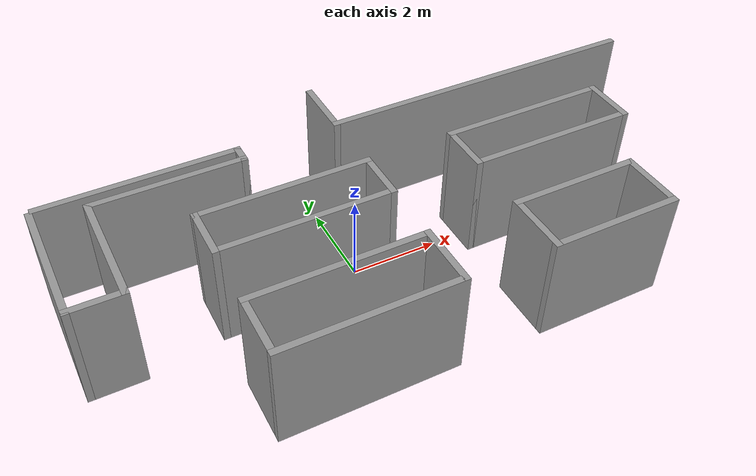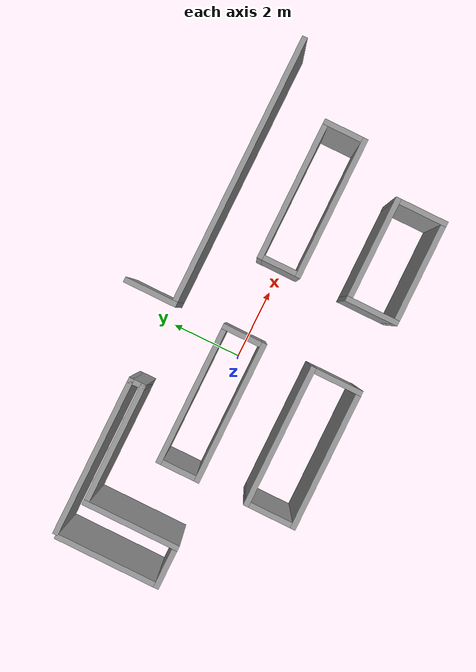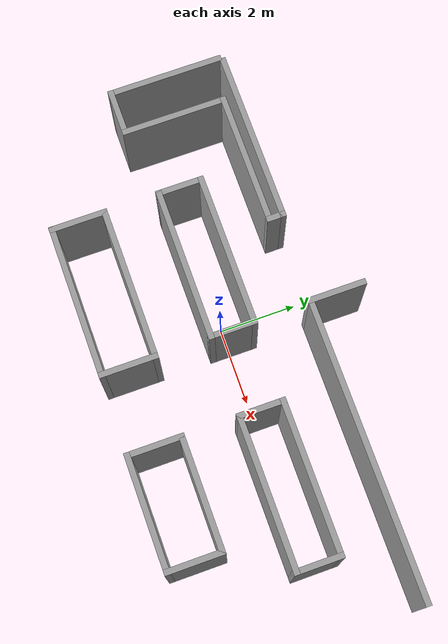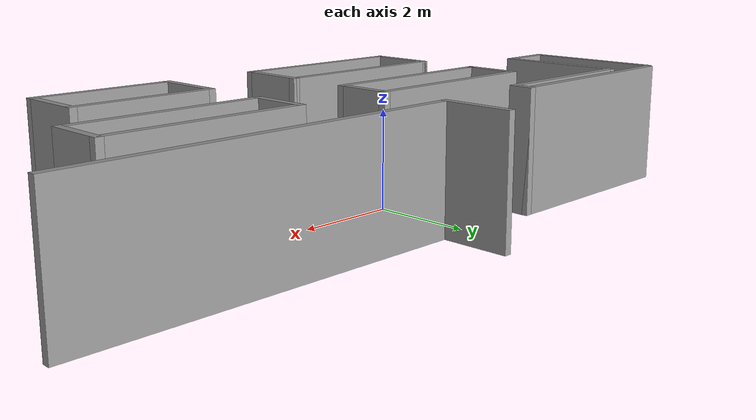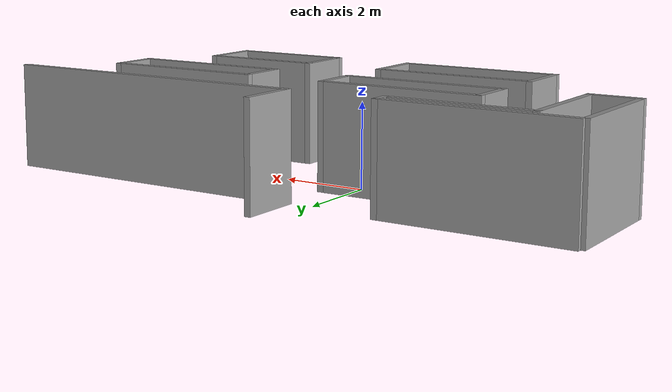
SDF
<?xml version='1.0'?>
<sdf version='1.7'>
  <model name='wall'>
    <pose>1.03476 0.104645 0 0 -0 0</pose>
    <link name='Wall_0'>
      <collision name='Wall_0_Collision'>
        <geometry>
          <box>
            <size>4 0.15 2.5</size>
          </box>
        </geometry>
        <pose>0 0 1.25 0 -0 0</pose>
      </collision>
      <visual name='Wall_0_Visual'>
        <pose>0 0 1.25 0 -0 0</pose>
        <geometry>
          <box>
            <size>4 0.15 2.5</size>
          </box>
        </geometry>
        <material>
          <script>
            <uri>file://media/materials/scripts/gazebo.material</uri>
            <name>Gazebo/Grey</name>
          </script>
          <ambient>1 1 1 1</ambient>
        </material>
        <meta>
          <layer>0</layer>
        </meta>
      </visual>
      <pose>-2.30976 -1.96464 0 0 -0 0</pose>
    </link>
    <link name='Wall_1'>
      <collision name='Wall_1_Collision'>
        <geometry>
          <box>
            <size>1.5 0.15 2.5</size>
          </box>
        </geometry>
        <pose>0 0 1.25 0 -0 0</pose>
      </collision>
      <visual name='Wall_1_Visual'>
        <pose>0 0 1.25 0 -0 0</pose>
        <geometry>
          <box>
            <size>1.5 0.15 2.5</size>
          </box>
        </geometry>
        <material>
          <script>
            <uri>file://media/materials/scripts/gazebo.material</uri>
            <name>Gazebo/Grey</name>
          </script>
          <ambient>1 1 1 1</ambient>
        </material>
        <meta>
          <layer>0</layer>
        </meta>
      </visual>
      <pose>-0.384764 -2.63964 0 0 -0 -1.5708</pose>
    </link>
    <link name='Wall_11'>
      <collision name='Wall_11_Collision'>
        <geometry>
          <box>
            <size>4 0.15 2.5</size>
          </box>
        </geometry>
        <pose>0 0 1.25 0 -0 0</pose>
      </collision>
      <visual name='Wall_11_Visual'>
        <pose>0 0 1.25 0 -0 0</pose>
        <geometry>
          <box>
            <size>4 0.15 2.5</size>
          </box>
        </geometry>
        <material>
          <script>
            <uri>file://media/materials/scripts/gazebo.material</uri>
            <name>Gazebo/Grey</name>
          </script>
          <ambient>1 1 1 1</ambient>
        </material>
        <meta>
          <layer>0</layer>
        </meta>
      </visual>
      <pose>-2.32146 -0.551695 0 0 -0 0</pose>
    </link>
    <link name='Wall_12'>
      <collision name='Wall_12_Collision'>
        <geometry>
          <box>
            <size>1.25 0.15 2.5</size>
          </box>
        </geometry>
        <pose>0 0 1.25 0 -0 0</pose>
      </collision>
      <visual name='Wall_12_Visual'>
        <pose>0 0 1.25 0 -0 0</pose>
        <geometry>
          <box>
            <size>1.25 0.15 2.5</size>
          </box>
        </geometry>
        <material>
          <script>
            <uri>file://media/materials/scripts/gazebo.material</uri>
            <name>Gazebo/Grey</name>
          </script>
          <ambient>1 1 1 1</ambient>
        </material>
        <meta>
          <layer>0</layer>
        </meta>
      </visual>
      <pose>-0.396464 -0.001695 0 0 -0 1.5708</pose>
    </link>
    <link name='Wall_13'>
      <collision name='Wall_13_Collision'>
        <geometry>
          <box>
            <size>4 0.15 2.5</size>
          </box>
        </geometry>
        <pose>0 0 1.25 0 -0 0</pose>
      </collision>
      <visual name='Wall_13_Visual'>
        <pose>0 0 1.25 0 -0 0</pose>
        <geometry>
          <box>
            <size>4 0.15 2.5</size>
          </box>
        </geometry>
        <material>
          <script>
            <uri>file://media/materials/scripts/gazebo.material</uri>
            <name>Gazebo/Grey</name>
          </script>
          <ambient>1 1 1 1</ambient>
        </material>
        <meta>
          <layer>0</layer>
        </meta>
      </visual>
      <pose>-2.32146 0.548305 0 0 -0 3.14159</pose>
    </link>
    <link name='Wall_14'>
      <collision name='Wall_14_Collision'>
        <geometry>
          <box>
            <size>1.25 0.15 2.5</size>
          </box>
        </geometry>
        <pose>0 0 1.25 0 -0 0</pose>
      </collision>
      <visual name='Wall_14_Visual'>
        <pose>0 0 1.25 0 -0 0</pose>
        <geometry>
          <box>
            <size>1.25 0.15 2.5</size>
          </box>
        </geometry>
        <material>
          <script>
            <uri>file://media/materials/scripts/gazebo.material</uri>
            <name>Gazebo/Grey</name>
          </script>
          <ambient>1 1 1 1</ambient>
        </material>
        <meta>
          <layer>0</layer>
        </meta>
      </visual>
      <pose>-4.24646 -0.001695 0 0 -0 -1.5708</pose>
    </link>
    <link name='Wall_16'>
      <collision name='Wall_16_Collision'>
        <geometry>
          <box>
            <size>4 0.15 2.5</size>
          </box>
        </geometry>
        <pose>0 0 1.25 0 -0 0</pose>
      </collision>
      <visual name='Wall_16_Visual'>
        <pose>0 0 1.25 0 -0 0</pose>
        <geometry>
          <box>
            <size>4 0.15 2.5</size>
          </box>
        </geometry>
        <material>
          <script>
            <uri>file://media/materials/scripts/gazebo.material</uri>
            <name>Gazebo/Grey</name>
          </script>
          <ambient>1 1 1 1</ambient>
        </material>
        <meta>
          <layer>0</layer>
        </meta>
      </visual>
      <pose>3.57689 -0.56492 0 0 -0 0</pose>
    </link>
    <link name='Wall_17'>
      <collision name='Wall_17_Collision'>
        <geometry>
          <box>
            <size>1.25 0.15 2.5</size>
          </box>
        </geometry>
        <pose>0 0 1.25 0 -0 0</pose>
      </collision>
      <visual name='Wall_17_Visual'>
        <pose>0 0 1.25 0 -0 0</pose>
        <geometry>
          <box>
            <size>1.25 0.15 2.5</size>
          </box>
        </geometry>
        <material>
          <script>
            <uri>file://media/materials/scripts/gazebo.material</uri>
            <name>Gazebo/Grey</name>
          </script>
          <ambient>1 1 1 1</ambient>
        </material>
        <meta>
          <layer>0</layer>
        </meta>
      </visual>
      <pose>5.50189 -0.01492 0 0 -0 1.5708</pose>
    </link>
    <link name='Wall_18'>
      <collision name='Wall_18_Collision'>
        <geometry>
          <box>
            <size>4 0.15 2.5</size>
          </box>
        </geometry>
        <pose>0 0 1.25 0 -0 0</pose>
      </collision>
      <visual name='Wall_18_Visual'>
        <pose>0 0 1.25 0 -0 0</pose>
        <geometry>
          <box>
            <size>4 0.15 2.5</size>
          </box>
        </geometry>
        <material>
          <script>
            <uri>file://media/materials/scripts/gazebo.material</uri>
            <name>Gazebo/Grey</name>
          </script>
          <ambient>1 1 1 1</ambient>
        </material>
        <meta>
          <layer>0</layer>
        </meta>
      </visual>
      <pose>3.57689 0.53508 0 0 -0 3.14159</pose>
    </link>
    <link name='Wall_19'>
      <collision name='Wall_19_Collision'>
        <geometry>
          <box>
            <size>1.25 0.15 2.5</size>
          </box>
        </geometry>
        <pose>0 0 1.25 0 -0 0</pose>
      </collision>
      <visual name='Wall_19_Visual'>
        <pose>0 0 1.25 0 -0 0</pose>
        <geometry>
          <box>
            <size>1.25 0.15 2.5</size>
          </box>
        </geometry>
        <material>
          <script>
            <uri>file://media/materials/scripts/gazebo.material</uri>
            <name>Gazebo/Grey</name>
          </script>
          <ambient>1 1 1 1</ambient>
        </material>
        <meta>
          <layer>0</layer>
        </meta>
      </visual>
      <pose>1.65189 -0.01492 0 0 -0 -1.5708</pose>
    </link>
    <link name='Wall_21'>
      <collision name='Wall_21_Collision'>
        <geometry>
          <box>
            <size>2.75 0.15 2.5</size>
          </box>
        </geometry>
        <pose>0 0 1.25 0 -0 0</pose>
      </collision>
      <visual name='Wall_21_Visual'>
        <pose>0 0 1.25 0 -0 0</pose>
        <geometry>
          <box>
            <size>2.75 0.15 2.5</size>
          </box>
        </geometry>
        <material>
          <script>
            <uri>file://media/materials/scripts/gazebo.material</uri>
            <name>Gazebo/Grey</name>
          </script>
          <ambient>1 1 1 1</ambient>
        </material>
        <meta>
          <layer>0</layer>
        </meta>
      </visual>
      <pose>-6.0648 0.479483 0 0 -0 1.5708</pose>
    </link>
    <link name='Wall_22'>
      <collision name='Wall_22_Collision'>
        <geometry>
          <box>
            <size>3.5 0.15 2.5</size>
          </box>
        </geometry>
        <pose>0 0 1.25 0 -0 0</pose>
      </collision>
      <visual name='Wall_22_Visual'>
        <pose>0 0 1.25 0 -0 0</pose>
        <geometry>
          <box>
            <size>3.5 0.15 2.5</size>
          </box>
        </geometry>
        <material>
          <script>
            <uri>file://media/materials/scripts/gazebo.material</uri>
            <name>Gazebo/Grey</name>
          </script>
          <ambient>1 1 1 1</ambient>
        </material>
        <meta>
          <layer>0</layer>
        </meta>
      </visual>
      <pose>-4.3898 1.77948 0 0 -0 0</pose>
    </link>
    <link name='Wall_23'>
      <collision name='Wall_23_Collision'>
        <geometry>
          <box>
            <size>0.5 0.15 2.5</size>
          </box>
        </geometry>
        <pose>0 0 1.25 0 -0 0</pose>
      </collision>
      <visual name='Wall_23_Visual'>
        <pose>0 0 1.25 0 -0 0</pose>
        <geometry>
          <box>
            <size>0.5 0.15 2.5</size>
          </box>
        </geometry>
        <material>
          <script>
            <uri>file://media/materials/scripts/gazebo.material</uri>
            <name>Gazebo/Grey</name>
          </script>
          <ambient>1 1 1 1</ambient>
        </material>
        <meta>
          <layer>0</layer>
        </meta>
      </visual>
      <pose>-2.7148 1.95448 0 0 -0 1.5708</pose>
    </link>
    <link name='Wall_24'>
      <collision name='Wall_24_Collision'>
        <geometry>
          <box>
            <size>4.5 0.15 2.5</size>
          </box>
        </geometry>
        <pose>0 0 1.25 0 -0 0</pose>
      </collision>
      <visual name='Wall_24_Visual'>
        <pose>0 0 1.25 0 -0 0</pose>
        <geometry>
          <box>
            <size>4.5 0.15 2.5</size>
          </box>
        </geometry>
        <material>
          <script>
            <uri>file://media/materials/scripts/gazebo.material</uri>
            <name>Gazebo/Grey</name>
          </script>
          <ambient>1 1 1 1</ambient>
        </material>
        <meta>
          <layer>0</layer>
        </meta>
      </visual>
      <pose>-4.8898 2.12948 0 0 -0 3.14159</pose>
    </link>
    <link name='Wall_28'>
      <collision name='Wall_28_Collision'>
        <geometry>
          <box>
            <size>1.25 0.15 2.5</size>
          </box>
        </geometry>
        <pose>0 0 1.25 0 -0 0</pose>
      </collision>
      <visual name='Wall_28_Visual'>
        <pose>0 0 1.25 0 -0 0</pose>
        <geometry>
          <box>
            <size>1.25 0.15 2.5</size>
          </box>
        </geometry>
        <material>
          <script>
            <uri>file://media/materials/scripts/gazebo.material</uri>
            <name>Gazebo/Grey</name>
          </script>
          <ambient>1 1 1 1</ambient>
        </material>
        <meta>
          <layer>0</layer>
        </meta>
      </visual>
      <pose>-6.6148 -0.820517 0 0 -0 3.14159</pose>
    </link>
    <link name='Wall_29'>
      <collision name='Wall_29_Collision'>
        <geometry>
          <box>
            <size>3 0.15 2.5</size>
          </box>
        </geometry>
        <pose>0 0 1.25 0 -0 0</pose>
      </collision>
      <visual name='Wall_29_Visual'>
        <pose>0 0 1.25 0 -0 0</pose>
        <geometry>
          <box>
            <size>3 0.15 2.5</size>
          </box>
        </geometry>
        <material>
          <script>
            <uri>file://media/materials/scripts/gazebo.material</uri>
            <name>Gazebo/Grey</name>
          </script>
          <ambient>1 1 1 1</ambient>
        </material>
        <meta>
          <layer>0</layer>
        </meta>
      </visual>
      <pose>-7.1648 0.604483 0 0 -0 1.5708</pose>
    </link>
    <link name='Wall_3'>
      <collision name='Wall_3_Collision'>
        <geometry>
          <box>
            <size>1.5 0.15 2.5</size>
          </box>
        </geometry>
        <pose>0 0 1.25 0 -0 0</pose>
      </collision>
      <visual name='Wall_3_Visual'>
        <pose>0 0 1.25 0 -0 0</pose>
        <geometry>
          <box>
            <size>1.5 0.15 2.5</size>
          </box>
        </geometry>
        <material>
          <script>
            <uri>file://media/materials/scripts/gazebo.material</uri>
            <name>Gazebo/Grey</name>
          </script>
          <ambient>1 1 1 1</ambient>
        </material>
        <meta>
          <layer>0</layer>
        </meta>
      </visual>
      <pose>1.65524 -2.67964 0 0 -0 1.5708</pose>
    </link>
    <link name='Wall_31'>
      <collision name='Wall_31_Collision'>
        <geometry>
          <box>
            <size>1.5 0.15 2.5</size>
          </box>
        </geometry>
        <pose>0 0 1.25 0 -0 0</pose>
      </collision>
      <visual name='Wall_31_Visual'>
        <pose>0 0 1.25 0 -0 0</pose>
        <geometry>
          <box>
            <size>1.5 0.15 2.5</size>
          </box>
        </geometry>
        <material>
          <script>
            <uri>file://media/materials/scripts/gazebo.material</uri>
            <name>Gazebo/Grey</name>
          </script>
          <ambient>1 1 1 1</ambient>
        </material>
        <meta>
          <layer>0</layer>
        </meta>
      </visual>
      <pose>-0.435201 2.67964 0 0 -0 -1.5708</pose>
    </link>
    <link name='Wall_32'>
      <collision name='Wall_32_Collision'>
        <geometry>
          <box>
            <size>7.75 0.15 2.5</size>
          </box>
        </geometry>
        <pose>0 0 1.25 0 -0 0</pose>
      </collision>
      <visual name='Wall_32_Visual'>
        <pose>0 0 1.25 0 -0 0</pose>
        <geometry>
          <box>
            <size>7.75 0.15 2.5</size>
          </box>
        </geometry>
        <material>
          <script>
            <uri>file://media/materials/scripts/gazebo.material</uri>
            <name>Gazebo/Grey</name>
          </script>
          <ambient>1 1 1 1</ambient>
        </material>
        <meta>
          <layer>0</layer>
        </meta>
      </visual>
      <pose>3.3648 2.00465 0 0 -0 0</pose>
    </link>
    <link name='Wall_4'>
      <collision name='Wall_4_Collision'>
        <geometry>
          <box>
            <size>3 0.15 2.5</size>
          </box>
        </geometry>
        <pose>0 0 1.25 0 -0 0</pose>
      </collision>
      <visual name='Wall_4_Visual'>
        <pose>0 0 1.25 0 -0 0</pose>
        <geometry>
          <box>
            <size>3 0.15 2.5</size>
          </box>
        </geometry>
        <material>
          <script>
            <uri>file://media/materials/scripts/gazebo.material</uri>
            <name>Gazebo/Grey</name>
          </script>
          <ambient>1 1 1 1</ambient>
        </material>
        <meta>
          <layer>0</layer>
        </meta>
      </visual>
      <pose>3.08024 -2.00465 0 0 -0 0</pose>
    </link>
    <link name='Wall_5'>
      <collision name='Wall_5_Collision'>
        <geometry>
          <box>
            <size>1.5 0.15 2.5</size>
          </box>
        </geometry>
        <pose>0 0 1.25 0 -0 0</pose>
      </collision>
      <visual name='Wall_5_Visual'>
        <pose>0 0 1.25 0 -0 0</pose>
        <geometry>
          <box>
            <size>1.5 0.15 2.5</size>
          </box>
        </geometry>
        <material>
          <script>
            <uri>file://media/materials/scripts/gazebo.material</uri>
            <name>Gazebo/Grey</name>
          </script>
          <ambient>1 1 1 1</ambient>
        </material>
        <meta>
          <layer>0</layer>
        </meta>
      </visual>
      <pose>4.50524 -2.67964 0 0 -0 -1.5708</pose>
    </link>
    <link name='Wall_6'>
      <collision name='Wall_6_Collision'>
        <geometry>
          <box>
            <size>3 0.15 2.5</size>
          </box>
        </geometry>
        <pose>0 0 1.25 0 -0 0</pose>
      </collision>
      <visual name='Wall_6_Visual'>
        <pose>0 0 1.25 0 -0 0</pose>
        <geometry>
          <box>
            <size>3 0.15 2.5</size>
          </box>
        </geometry>
        <material>
          <script>
            <uri>file://media/materials/scripts/gazebo.material</uri>
            <name>Gazebo/Grey</name>
          </script>
          <ambient>1 1 1 1</ambient>
        </material>
        <meta>
          <layer>0</layer>
        </meta>
      </visual>
      <pose>3.08024 -3.35465 0 0 -0 3.14159</pose>
    </link>
    <link name='Wall_8'>
      <collision name='Wall_8_Collision'>
        <geometry>
          <box>
            <size>4 0.15 2.5</size>
          </box>
        </geometry>
        <pose>0 0 1.25 0 -0 0</pose>
      </collision>
      <visual name='Wall_8_Visual'>
        <pose>0 0 1.25 0 -0 0</pose>
        <geometry>
          <box>
            <size>4 0.15 2.5</size>
          </box>
        </geometry>
        <material>
          <script>
            <uri>file://media/materials/scripts/gazebo.material</uri>
            <name>Gazebo/Grey</name>
          </script>
          <ambient>1 1 1 1</ambient>
        </material>
        <meta>
          <layer>0</layer>
        </meta>
      </visual>
      <pose>-2.30976 -3.31465 0 0 -0 3.14159</pose>
    </link>
    <link name='Wall_9'>
      <collision name='Wall_9_Collision'>
        <geometry>
          <box>
            <size>1.5 0.15 2.5</size>
          </box>
        </geometry>
        <pose>0 0 1.25 0 -0 0</pose>
      </collision>
      <visual name='Wall_9_Visual'>
        <pose>0 0 1.25 0 -0 0</pose>
        <geometry>
          <box>
            <size>1.5 0.15 2.5</size>
          </box>
        </geometry>
        <material>
          <script>
            <uri>file://media/materials/scripts/gazebo.material</uri>
            <name>Gazebo/Grey</name>
          </script>
          <ambient>1 1 1 1</ambient>
        </material>
        <meta>
          <layer>0</layer>
        </meta>
      </visual>
      <pose>-4.23476 -2.63964 0 0 -0 1.5708</pose>
    </link>
    <static>1</static>
  </model>
</sdf>
